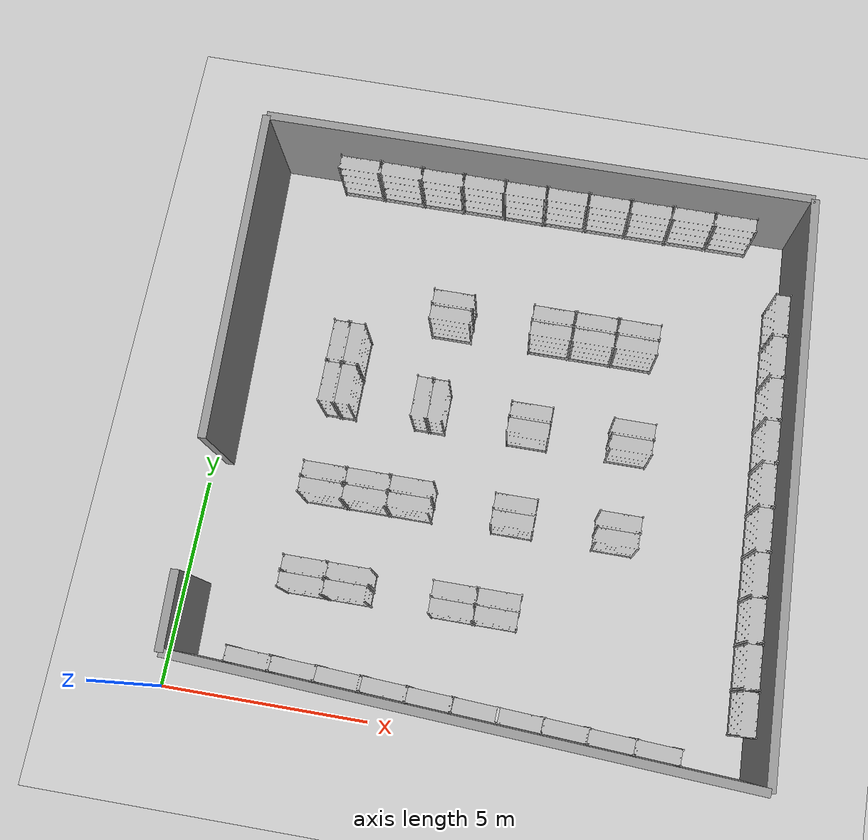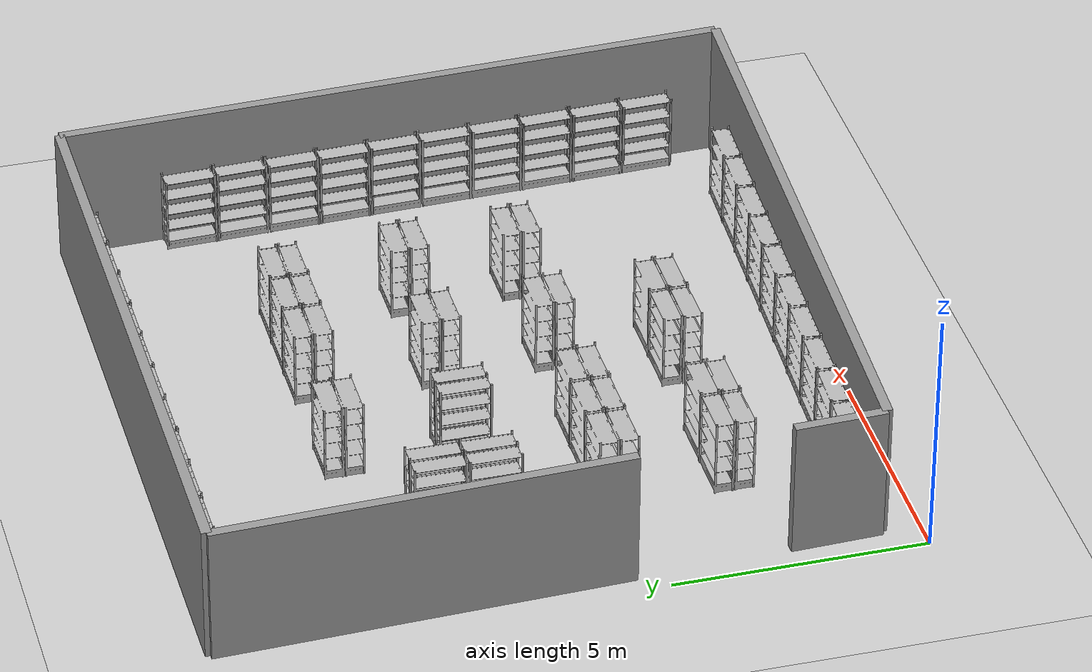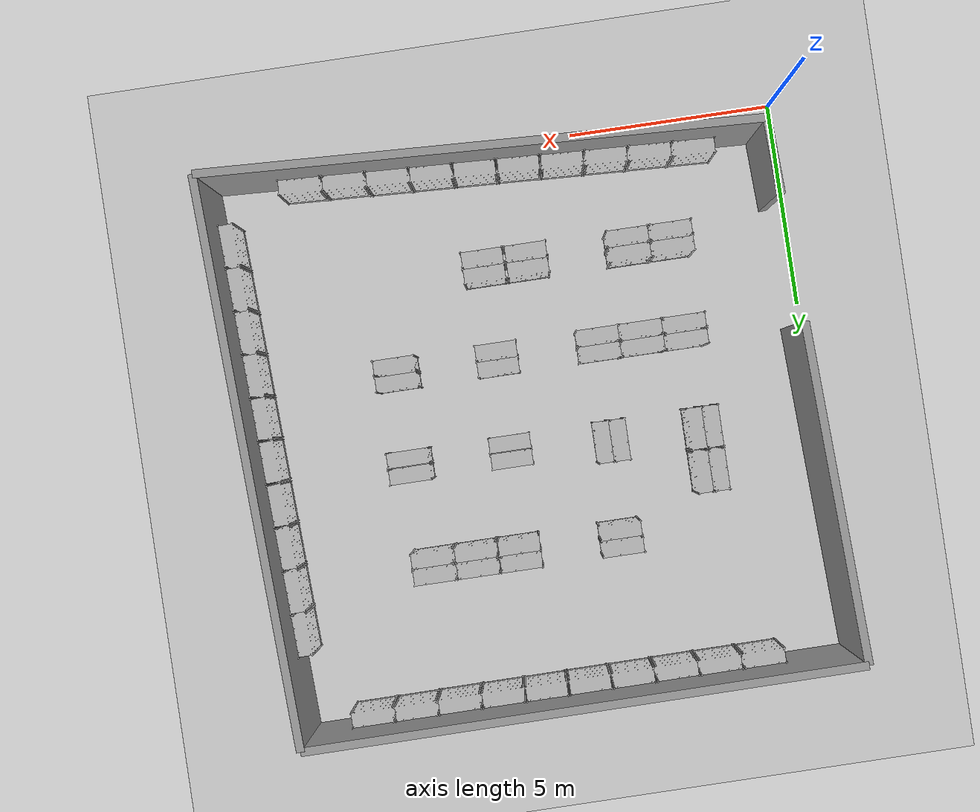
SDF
<sdf version="1.6">
 <world name="default">
  <model name="ground_plane">
   <static>1</static>
   <link name="link">
    <collision name="collision">
     <geometry><plane><normal>0 0 1</normal><size>100 100</size></plane></geometry>
     <surface>
      <contact><collide_bitmask>65535</collide_bitmask></contact>
      <friction><ode><mu>1000</mu><mu2>1000</mu2></ode></friction>
     </surface>
    </collision>
    <visual name="visual">
     <cast_shadows>0</cast_shadows>
     <geometry><plane><normal>0 0 1</normal><size>100 100</size></plane></geometry>
     <material>
      <script><uri>file://media/materials/scripts/gazebo.material</uri><name>Gazebo/Grey</name></script>
     </material>
    </visual>
   </link>
  </model>
  <model name="store_shelf_moduled_0">
   <link name="link">
    <collision name="collision">
     <geometry><mesh><uri>model://store_shelf_moduled/meshes/store_shelf_moduled.dae</uri></mesh></geometry>
    </collision>
    <visual name="visual">
     <geometry><mesh><uri>model://store_shelf_moduled/meshes/store_shelf_moduled.dae</uri></mesh></geometry>
    </visual>
    <inertial>
     <mass>1000</mass>
     <inertia>
      <ixx>840083</ixx>
      <ixy>0</ixy>
      <ixz>0</ixz>
      <iyy>475500</iyy>
      <iyz>0</iyz>
      <izz>1.30208e+06</izz>
     </inertia>
    </inertial>
   </link>
   <static>1</static>
   <pose>1.63493 0.7998784 0 0 0 -0.04932421</pose>
  </model>
  <model name="store_shelf_moduled_1">
   <link name="link">
    <collision name="collision">
     <geometry><mesh><uri>model://store_shelf_moduled/meshes/store_shelf_moduled.dae</uri></mesh></geometry>
    </collision>
    <visual name="visual">
     <geometry><mesh><uri>model://store_shelf_moduled/meshes/store_shelf_moduled.dae</uri></mesh></geometry>
    </visual>
    <inertial>
     <mass>1000</mass>
     <inertia>
      <ixx>840083</ixx>
      <ixy>0</ixy>
      <ixz>0</ixz>
      <iyy>475500</iyy>
      <iyz>0</iyz>
      <izz>1.30208e+06</izz>
     </inertia>
    </inertial>
   </link>
   <static>1</static>
   <pose>2.69493 0.7498784 0 0 0 -0.04932421</pose>
  </model>
  <model name="store_shelf_moduled_2">
   <link name="link">
    <collision name="collision">
     <geometry><mesh><uri>model://store_shelf_moduled/meshes/store_shelf_moduled.dae</uri></mesh></geometry>
    </collision>
    <visual name="visual">
     <geometry><mesh><uri>model://store_shelf_moduled/meshes/store_shelf_moduled.dae</uri></mesh></geometry>
    </visual>
    <inertial>
     <mass>1000</mass>
     <inertia>
      <ixx>840083</ixx>
      <ixy>0</ixy>
      <ixz>0</ixz>
      <iyy>475500</iyy>
      <iyz>0</iyz>
      <izz>1.30208e+06</izz>
     </inertia>
    </inertial>
   </link>
   <static>1</static>
   <pose>3.75493 0.6998784 0 0 0 -0.04932421</pose>
  </model>
  <model name="store_shelf_moduled_3">
   <link name="link">
    <collision name="collision">
     <geometry><mesh><uri>model://store_shelf_moduled/meshes/store_shelf_moduled.dae</uri></mesh></geometry>
    </collision>
    <visual name="visual">
     <geometry><mesh><uri>model://store_shelf_moduled/meshes/store_shelf_moduled.dae</uri></mesh></geometry>
    </visual>
    <inertial>
     <mass>1000</mass>
     <inertia>
      <ixx>840083</ixx>
      <ixy>0</ixy>
      <ixz>0</ixz>
      <iyy>475500</iyy>
      <iyz>0</iyz>
      <izz>1.30208e+06</izz>
     </inertia>
    </inertial>
   </link>
   <static>1</static>
   <pose>4.81493 0.6498784 0 0 0 -0.04932421</pose>
  </model>
  <model name="store_shelf_moduled_4">
   <link name="link">
    <collision name="collision">
     <geometry><mesh><uri>model://store_shelf_moduled/meshes/store_shelf_moduled.dae</uri></mesh></geometry>
    </collision>
    <visual name="visual">
     <geometry><mesh><uri>model://store_shelf_moduled/meshes/store_shelf_moduled.dae</uri></mesh></geometry>
    </visual>
    <inertial>
     <mass>1000</mass>
     <inertia>
      <ixx>840083</ixx>
      <ixy>0</ixy>
      <ixz>0</ixz>
      <iyy>475500</iyy>
      <iyz>0</iyz>
      <izz>1.30208e+06</izz>
     </inertia>
    </inertial>
   </link>
   <static>1</static>
   <pose>5.87493 0.5898784 0 0 0 -0.04932421</pose>
  </model>
  <model name="store_shelf_moduled_5">
   <link name="link">
    <collision name="collision">
     <geometry><mesh><uri>model://store_shelf_moduled/meshes/store_shelf_moduled.dae</uri></mesh></geometry>
    </collision>
    <visual name="visual">
     <geometry><mesh><uri>model://store_shelf_moduled/meshes/store_shelf_moduled.dae</uri></mesh></geometry>
    </visual>
    <inertial>
     <mass>1000</mass>
     <inertia>
      <ixx>840083</ixx>
      <ixy>0</ixy>
      <ixz>0</ixz>
      <iyy>475500</iyy>
      <iyz>0</iyz>
      <izz>1.30208e+06</izz>
     </inertia>
    </inertial>
   </link>
   <static>1</static>
   <pose>6.93493 0.5398784 0 0 0 -0.04932421</pose>
  </model>
  <model name="store_shelf_moduled_6">
   <link name="link">
    <collision name="collision">
     <geometry><mesh><uri>model://store_shelf_moduled/meshes/store_shelf_moduled.dae</uri></mesh></geometry>
    </collision>
    <visual name="visual">
     <geometry><mesh><uri>model://store_shelf_moduled/meshes/store_shelf_moduled.dae</uri></mesh></geometry>
    </visual>
    <inertial>
     <mass>1000</mass>
     <inertia>
      <ixx>840083</ixx>
      <ixy>0</ixy>
      <ixz>0</ixz>
      <iyy>475500</iyy>
      <iyz>0</iyz>
      <izz>1.30208e+06</izz>
     </inertia>
    </inertial>
   </link>
   <static>1</static>
   <pose>7.99493 0.4898784 0 0 0 -0.04932421</pose>
  </model>
  <model name="store_shelf_moduled_7">
   <link name="link">
    <collision name="collision">
     <geometry><mesh><uri>model://store_shelf_moduled/meshes/store_shelf_moduled.dae</uri></mesh></geometry>
    </collision>
    <visual name="visual">
     <geometry><mesh><uri>model://store_shelf_moduled/meshes/store_shelf_moduled.dae</uri></mesh></geometry>
    </visual>
    <inertial>
     <mass>1000</mass>
     <inertia>
      <ixx>840083</ixx>
      <ixy>0</ixy>
      <ixz>0</ixz>
      <iyy>475500</iyy>
      <iyz>0</iyz>
      <izz>1.30208e+06</izz>
     </inertia>
    </inertial>
   </link>
   <static>1</static>
   <pose>9.04493 0.4398784 0 0 0 -0.04932421</pose>
  </model>
  <model name="store_shelf_moduled_8">
   <link name="link">
    <collision name="collision">
     <geometry><mesh><uri>model://store_shelf_moduled/meshes/store_shelf_moduled.dae</uri></mesh></geometry>
    </collision>
    <visual name="visual">
     <geometry><mesh><uri>model://store_shelf_moduled/meshes/store_shelf_moduled.dae</uri></mesh></geometry>
    </visual>
    <inertial>
     <mass>1000</mass>
     <inertia>
      <ixx>840083</ixx>
      <ixy>0</ixy>
      <ixz>0</ixz>
      <iyy>475500</iyy>
      <iyz>0</iyz>
      <izz>1.30208e+06</izz>
     </inertia>
    </inertial>
   </link>
   <static>1</static>
   <pose>10.10493 0.3798784 0 0 0 -0.04932421</pose>
  </model>
  <model name="store_shelf_moduled_9">
   <link name="link">
    <collision name="collision">
     <geometry><mesh><uri>model://store_shelf_moduled/meshes/store_shelf_moduled.dae</uri></mesh></geometry>
    </collision>
    <visual name="visual">
     <geometry><mesh><uri>model://store_shelf_moduled/meshes/store_shelf_moduled.dae</uri></mesh></geometry>
    </visual>
    <inertial>
     <mass>1000</mass>
     <inertia>
      <ixx>840083</ixx>
      <ixy>0</ixy>
      <ixz>0</ixz>
      <iyy>475500</iyy>
      <iyz>0</iyz>
      <izz>1.30208e+06</izz>
     </inertia>
    </inertial>
   </link>
   <static>1</static>
   <pose>11.16493 0.3298784 0 0 0 -0.04932421</pose>
  </model>
  <model name="store_shelf_moduled_10">
   <link name="link">
    <collision name="collision">
     <geometry><mesh><uri>model://store_shelf_moduled/meshes/store_shelf_moduled.dae</uri></mesh></geometry>
    </collision>
    <visual name="visual">
     <geometry><mesh><uri>model://store_shelf_moduled/meshes/store_shelf_moduled.dae</uri></mesh></geometry>
    </visual>
    <inertial>
     <mass>1000</mass>
     <inertia>
      <ixx>840083</ixx>
      <ixy>0</ixy>
      <ixz>0</ixz>
      <iyy>475500</iyy>
      <iyz>0</iyz>
      <izz>1.30208e+06</izz>
     </inertia>
    </inertial>
   </link>
   <static>1</static>
   <pose>13.80007 1.146185 0 0 0 1.608957</pose>
  </model>
  <model name="store_shelf_moduled_11">
   <link name="link">
    <collision name="collision">
     <geometry><mesh><uri>model://store_shelf_moduled/meshes/store_shelf_moduled.dae</uri></mesh></geometry>
    </collision>
    <visual name="visual">
     <geometry><mesh><uri>model://store_shelf_moduled/meshes/store_shelf_moduled.dae</uri></mesh></geometry>
    </visual>
    <inertial>
     <mass>1000</mass>
     <inertia>
      <ixx>840083</ixx>
      <ixy>0</ixy>
      <ixz>0</ixz>
      <iyy>475500</iyy>
      <iyz>0</iyz>
      <izz>1.30208e+06</izz>
     </inertia>
    </inertial>
   </link>
   <static>1</static>
   <pose>13.76007 2.206185 0 0 0 1.608957</pose>
  </model>
  <model name="store_shelf_moduled_12">
   <link name="link">
    <collision name="collision">
     <geometry><mesh><uri>model://store_shelf_moduled/meshes/store_shelf_moduled.dae</uri></mesh></geometry>
    </collision>
    <visual name="visual">
     <geometry><mesh><uri>model://store_shelf_moduled/meshes/store_shelf_moduled.dae</uri></mesh></geometry>
    </visual>
    <inertial>
     <mass>1000</mass>
     <inertia>
      <ixx>840083</ixx>
      <ixy>0</ixy>
      <ixz>0</ixz>
      <iyy>475500</iyy>
      <iyz>0</iyz>
      <izz>1.30208e+06</izz>
     </inertia>
    </inertial>
   </link>
   <static>1</static>
   <pose>13.72007 3.266185 0 0 0 1.608957</pose>
  </model>
  <model name="store_shelf_moduled_13">
   <link name="link">
    <collision name="collision">
     <geometry><mesh><uri>model://store_shelf_moduled/meshes/store_shelf_moduled.dae</uri></mesh></geometry>
    </collision>
    <visual name="visual">
     <geometry><mesh><uri>model://store_shelf_moduled/meshes/store_shelf_moduled.dae</uri></mesh></geometry>
    </visual>
    <inertial>
     <mass>1000</mass>
     <inertia>
      <ixx>840083</ixx>
      <ixy>0</ixy>
      <ixz>0</ixz>
      <iyy>475500</iyy>
      <iyz>0</iyz>
      <izz>1.30208e+06</izz>
     </inertia>
    </inertial>
   </link>
   <static>1</static>
   <pose>13.68007 4.326185 0 0 0 1.608957</pose>
  </model>
  <model name="store_shelf_moduled_14">
   <link name="link">
    <collision name="collision">
     <geometry><mesh><uri>model://store_shelf_moduled/meshes/store_shelf_moduled.dae</uri></mesh></geometry>
    </collision>
    <visual name="visual">
     <geometry><mesh><uri>model://store_shelf_moduled/meshes/store_shelf_moduled.dae</uri></mesh></geometry>
    </visual>
    <inertial>
     <mass>1000</mass>
     <inertia>
      <ixx>840083</ixx>
      <ixy>0</ixy>
      <ixz>0</ixz>
      <iyy>475500</iyy>
      <iyz>0</iyz>
      <izz>1.30208e+06</izz>
     </inertia>
    </inertial>
   </link>
   <static>1</static>
   <pose>13.64007 5.386185 0 0 0 1.608957</pose>
  </model>
  <model name="store_shelf_moduled_15">
   <link name="link">
    <collision name="collision">
     <geometry><mesh><uri>model://store_shelf_moduled/meshes/store_shelf_moduled.dae</uri></mesh></geometry>
    </collision>
    <visual name="visual">
     <geometry><mesh><uri>model://store_shelf_moduled/meshes/store_shelf_moduled.dae</uri></mesh></geometry>
    </visual>
    <inertial>
     <mass>1000</mass>
     <inertia>
      <ixx>840083</ixx>
      <ixy>0</ixy>
      <ixz>0</ixz>
      <iyy>475500</iyy>
      <iyz>0</iyz>
      <izz>1.30208e+06</izz>
     </inertia>
    </inertial>
   </link>
   <static>1</static>
   <pose>13.60007 6.446185 0 0 0 1.608957</pose>
  </model>
  <model name="store_shelf_moduled_16">
   <link name="link">
    <collision name="collision">
     <geometry><mesh><uri>model://store_shelf_moduled/meshes/store_shelf_moduled.dae</uri></mesh></geometry>
    </collision>
    <visual name="visual">
     <geometry><mesh><uri>model://store_shelf_moduled/meshes/store_shelf_moduled.dae</uri></mesh></geometry>
    </visual>
    <inertial>
     <mass>1000</mass>
     <inertia>
      <ixx>840083</ixx>
      <ixy>0</ixy>
      <ixz>0</ixz>
      <iyy>475500</iyy>
      <iyz>0</iyz>
      <izz>1.30208e+06</izz>
     </inertia>
    </inertial>
   </link>
   <static>1</static>
   <pose>13.56007 7.506185 0 0 0 1.608957</pose>
  </model>
  <model name="store_shelf_moduled_17">
   <link name="link">
    <collision name="collision">
     <geometry><mesh><uri>model://store_shelf_moduled/meshes/store_shelf_moduled.dae</uri></mesh></geometry>
    </collision>
    <visual name="visual">
     <geometry><mesh><uri>model://store_shelf_moduled/meshes/store_shelf_moduled.dae</uri></mesh></geometry>
    </visual>
    <inertial>
     <mass>1000</mass>
     <inertia>
      <ixx>840083</ixx>
      <ixy>0</ixy>
      <ixz>0</ixz>
      <iyy>475500</iyy>
      <iyz>0</iyz>
      <izz>1.30208e+06</izz>
     </inertia>
    </inertial>
   </link>
   <static>1</static>
   <pose>13.52007 8.566185 0 0 0 1.608957</pose>
  </model>
  <model name="store_shelf_moduled_18">
   <link name="link">
    <collision name="collision">
     <geometry><mesh><uri>model://store_shelf_moduled/meshes/store_shelf_moduled.dae</uri></mesh></geometry>
    </collision>
    <visual name="visual">
     <geometry><mesh><uri>model://store_shelf_moduled/meshes/store_shelf_moduled.dae</uri></mesh></geometry>
    </visual>
    <inertial>
     <mass>1000</mass>
     <inertia>
      <ixx>840083</ixx>
      <ixy>0</ixy>
      <ixz>0</ixz>
      <iyy>475500</iyy>
      <iyz>0</iyz>
      <izz>1.30208e+06</izz>
     </inertia>
    </inertial>
   </link>
   <static>1</static>
   <pose>13.48007 9.626184 0 0 0 1.608957</pose>
  </model>
  <model name="store_shelf_moduled_19">
   <link name="link">
    <collision name="collision">
     <geometry><mesh><uri>model://store_shelf_moduled/meshes/store_shelf_moduled.dae</uri></mesh></geometry>
    </collision>
    <visual name="visual">
     <geometry><mesh><uri>model://store_shelf_moduled/meshes/store_shelf_moduled.dae</uri></mesh></geometry>
    </visual>
    <inertial>
     <mass>1000</mass>
     <inertia>
      <ixx>840083</ixx>
      <ixy>0</ixy>
      <ixz>0</ixz>
      <iyy>475500</iyy>
      <iyz>0</iyz>
      <izz>1.30208e+06</izz>
     </inertia>
    </inertial>
   </link>
   <static>1</static>
   <pose>13.44007 10.68618 0 0 0 1.608957</pose>
  </model>
  <model name="store_shelf_moduled_20">
   <link name="link">
    <collision name="collision">
     <geometry><mesh><uri>model://store_shelf_moduled/meshes/store_shelf_moduled.dae</uri></mesh></geometry>
    </collision>
    <visual name="visual">
     <geometry><mesh><uri>model://store_shelf_moduled/meshes/store_shelf_moduled.dae</uri></mesh></geometry>
    </visual>
    <inertial>
     <mass>1000</mass>
     <inertia>
      <ixx>840083</ixx>
      <ixy>0</ixy>
      <ixz>0</ixz>
      <iyy>475500</iyy>
      <iyz>0</iyz>
      <izz>1.30208e+06</izz>
     </inertia>
    </inertial>
   </link>
   <static>1</static>
   <pose>12.37037 13.61 0 0 0 -3.137842</pose>
  </model>
  <model name="store_shelf_moduled_21">
   <link name="link">
    <collision name="collision">
     <geometry><mesh><uri>model://store_shelf_moduled/meshes/store_shelf_moduled.dae</uri></mesh></geometry>
    </collision>
    <visual name="visual">
     <geometry><mesh><uri>model://store_shelf_moduled/meshes/store_shelf_moduled.dae</uri></mesh></geometry>
    </visual>
    <inertial>
     <mass>1000</mass>
     <inertia>
      <ixx>840083</ixx>
      <ixy>0</ixy>
      <ixz>0</ixz>
      <iyy>475500</iyy>
      <iyz>0</iyz>
      <izz>1.30208e+06</izz>
     </inertia>
    </inertial>
   </link>
   <static>1</static>
   <pose>11.31038 13.61 0 0 0 -3.137842</pose>
  </model>
  <model name="store_shelf_moduled_22">
   <link name="link">
    <collision name="collision">
     <geometry><mesh><uri>model://store_shelf_moduled/meshes/store_shelf_moduled.dae</uri></mesh></geometry>
    </collision>
    <visual name="visual">
     <geometry><mesh><uri>model://store_shelf_moduled/meshes/store_shelf_moduled.dae</uri></mesh></geometry>
    </visual>
    <inertial>
     <mass>1000</mass>
     <inertia>
      <ixx>840083</ixx>
      <ixy>0</ixy>
      <ixz>0</ixz>
      <iyy>475500</iyy>
      <iyz>0</iyz>
      <izz>1.30208e+06</izz>
     </inertia>
    </inertial>
   </link>
   <static>1</static>
   <pose>10.25037 13.6 0 0 0 -3.137842</pose>
  </model>
  <model name="store_shelf_moduled_23">
   <link name="link">
    <collision name="collision">
     <geometry><mesh><uri>model://store_shelf_moduled/meshes/store_shelf_moduled.dae</uri></mesh></geometry>
    </collision>
    <visual name="visual">
     <geometry><mesh><uri>model://store_shelf_moduled/meshes/store_shelf_moduled.dae</uri></mesh></geometry>
    </visual>
    <inertial>
     <mass>1000</mass>
     <inertia>
      <ixx>840083</ixx>
      <ixy>0</ixy>
      <ixz>0</ixz>
      <iyy>475500</iyy>
      <iyz>0</iyz>
      <izz>1.30208e+06</izz>
     </inertia>
    </inertial>
   </link>
   <static>1</static>
   <pose>9.190375 13.6 0 0 0 -3.137842</pose>
  </model>
  <model name="store_shelf_moduled_24">
   <link name="link">
    <collision name="collision">
     <geometry><mesh><uri>model://store_shelf_moduled/meshes/store_shelf_moduled.dae</uri></mesh></geometry>
    </collision>
    <visual name="visual">
     <geometry><mesh><uri>model://store_shelf_moduled/meshes/store_shelf_moduled.dae</uri></mesh></geometry>
    </visual>
    <inertial>
     <mass>1000</mass>
     <inertia>
      <ixx>840083</ixx>
      <ixy>0</ixy>
      <ixz>0</ixz>
      <iyy>475500</iyy>
      <iyz>0</iyz>
      <izz>1.30208e+06</izz>
     </inertia>
    </inertial>
   </link>
   <static>1</static>
   <pose>8.130375 13.6 0 0 0 -3.137842</pose>
  </model>
  <model name="store_shelf_moduled_25">
   <link name="link">
    <collision name="collision">
     <geometry><mesh><uri>model://store_shelf_moduled/meshes/store_shelf_moduled.dae</uri></mesh></geometry>
    </collision>
    <visual name="visual">
     <geometry><mesh><uri>model://store_shelf_moduled/meshes/store_shelf_moduled.dae</uri></mesh></geometry>
    </visual>
    <inertial>
     <mass>1000</mass>
     <inertia>
      <ixx>840083</ixx>
      <ixy>0</ixy>
      <ixz>0</ixz>
      <iyy>475500</iyy>
      <iyz>0</iyz>
      <izz>1.30208e+06</izz>
     </inertia>
    </inertial>
   </link>
   <static>1</static>
   <pose>7.070375 13.59 0 0 0 -3.137842</pose>
  </model>
  <model name="store_shelf_moduled_26">
   <link name="link">
    <collision name="collision">
     <geometry><mesh><uri>model://store_shelf_moduled/meshes/store_shelf_moduled.dae</uri></mesh></geometry>
    </collision>
    <visual name="visual">
     <geometry><mesh><uri>model://store_shelf_moduled/meshes/store_shelf_moduled.dae</uri></mesh></geometry>
    </visual>
    <inertial>
     <mass>1000</mass>
     <inertia>
      <ixx>840083</ixx>
      <ixy>0</ixy>
      <ixz>0</ixz>
      <iyy>475500</iyy>
      <iyz>0</iyz>
      <izz>1.30208e+06</izz>
     </inertia>
    </inertial>
   </link>
   <static>1</static>
   <pose>6.010375 13.59 0 0 0 -3.137842</pose>
  </model>
  <model name="store_shelf_moduled_27">
   <link name="link">
    <collision name="collision">
     <geometry><mesh><uri>model://store_shelf_moduled/meshes/store_shelf_moduled.dae</uri></mesh></geometry>
    </collision>
    <visual name="visual">
     <geometry><mesh><uri>model://store_shelf_moduled/meshes/store_shelf_moduled.dae</uri></mesh></geometry>
    </visual>
    <inertial>
     <mass>1000</mass>
     <inertia>
      <ixx>840083</ixx>
      <ixy>0</ixy>
      <ixz>0</ixz>
      <iyy>475500</iyy>
      <iyz>0</iyz>
      <izz>1.30208e+06</izz>
     </inertia>
    </inertial>
   </link>
   <static>1</static>
   <pose>4.950375 13.58 0 0 0 -3.137842</pose>
  </model>
  <model name="store_shelf_moduled_28">
   <link name="link">
    <collision name="collision">
     <geometry><mesh><uri>model://store_shelf_moduled/meshes/store_shelf_moduled.dae</uri></mesh></geometry>
    </collision>
    <visual name="visual">
     <geometry><mesh><uri>model://store_shelf_moduled/meshes/store_shelf_moduled.dae</uri></mesh></geometry>
    </visual>
    <inertial>
     <mass>1000</mass>
     <inertia>
      <ixx>840083</ixx>
      <ixy>0</ixy>
      <ixz>0</ixz>
      <iyy>475500</iyy>
      <iyz>0</iyz>
      <izz>1.30208e+06</izz>
     </inertia>
    </inertial>
   </link>
   <static>1</static>
   <pose>3.890375 13.58 0 0 0 -3.137842</pose>
  </model>
  <model name="store_shelf_moduled_29">
   <link name="link">
    <collision name="collision">
     <geometry><mesh><uri>model://store_shelf_moduled/meshes/store_shelf_moduled.dae</uri></mesh></geometry>
    </collision>
    <visual name="visual">
     <geometry><mesh><uri>model://store_shelf_moduled/meshes/store_shelf_moduled.dae</uri></mesh></geometry>
    </visual>
    <inertial>
     <mass>1000</mass>
     <inertia>
      <ixx>840083</ixx>
      <ixy>0</ixy>
      <ixz>0</ixz>
      <iyy>475500</iyy>
      <iyz>0</iyz>
      <izz>1.30208e+06</izz>
     </inertia>
    </inertial>
   </link>
   <static>1</static>
   <pose>2.830375 13.58 0 0 0 -3.137842</pose>
  </model>
  <model name="store_shelf_moduled_30">
   <link name="link">
    <collision name="collision">
     <geometry><mesh><uri>model://store_shelf_moduled/meshes/store_shelf_moduled.dae</uri></mesh></geometry>
    </collision>
    <visual name="visual">
     <geometry><mesh><uri>model://store_shelf_moduled/meshes/store_shelf_moduled.dae</uri></mesh></geometry>
    </visual>
    <inertial>
     <mass>1000</mass>
     <inertia>
      <ixx>840083</ixx>
      <ixy>0</ixy>
      <ixz>0</ixz>
      <iyy>475500</iyy>
      <iyz>0</iyz>
      <izz>1.30208e+06</izz>
     </inertia>
    </inertial>
   </link>
   <static>1</static>
   <pose>4.74 10.05 0 0 0 0</pose>
  </model>
  <model name="store_shelf_moduled_31">
   <link name="link">
    <collision name="collision">
     <geometry><mesh><uri>model://store_shelf_moduled/meshes/store_shelf_moduled.dae</uri></mesh></geometry>
    </collision>
    <visual name="visual">
     <geometry><mesh><uri>model://store_shelf_moduled/meshes/store_shelf_moduled.dae</uri></mesh></geometry>
    </visual>
    <inertial>
     <mass>1000</mass>
     <inertia>
      <ixx>840083</ixx>
      <ixy>0</ixy>
      <ixz>0</ixz>
      <iyy>475500</iyy>
      <iyz>0</iyz>
      <izz>1.30208e+06</izz>
     </inertia>
    </inertial>
   </link>
   <static>1</static>
   <pose>5.8 10.05 0 0 0 -3.141593</pose>
  </model>
  <model name="store_shelf_moduled_32">
   <link name="link">
    <collision name="collision">
     <geometry><mesh><uri>model://store_shelf_moduled/meshes/store_shelf_moduled.dae</uri></mesh></geometry>
    </collision>
    <visual name="visual">
     <geometry><mesh><uri>model://store_shelf_moduled/meshes/store_shelf_moduled.dae</uri></mesh></geometry>
    </visual>
    <inertial>
     <mass>1000</mass>
     <inertia>
      <ixx>840083</ixx>
      <ixy>0</ixy>
      <ixz>0</ixz>
      <iyy>475500</iyy>
      <iyz>0</iyz>
      <izz>1.30208e+06</izz>
     </inertia>
    </inertial>
   </link>
   <static>1</static>
   <pose>2.9 7.15 0 0 0 1.570796</pose>
  </model>
  <model name="store_shelf_moduled_33">
   <link name="link">
    <collision name="collision">
     <geometry><mesh><uri>model://store_shelf_moduled/meshes/store_shelf_moduled.dae</uri></mesh></geometry>
    </collision>
    <visual name="visual">
     <geometry><mesh><uri>model://store_shelf_moduled/meshes/store_shelf_moduled.dae</uri></mesh></geometry>
    </visual>
    <inertial>
     <mass>1000</mass>
     <inertia>
      <ixx>840083</ixx>
      <ixy>0</ixy>
      <ixz>0</ixz>
      <iyy>475500</iyy>
      <iyz>0</iyz>
      <izz>1.30208e+06</izz>
     </inertia>
    </inertial>
   </link>
   <static>1</static>
   <pose>2.9 8.21 0 0 0 -1.570796</pose>
  </model>
  <model name="store_shelf_moduled_34">
   <link name="link">
    <collision name="collision">
     <geometry><mesh><uri>model://store_shelf_moduled/meshes/store_shelf_moduled.dae</uri></mesh></geometry>
    </collision>
    <visual name="visual">
     <geometry><mesh><uri>model://store_shelf_moduled/meshes/store_shelf_moduled.dae</uri></mesh></geometry>
    </visual>
    <inertial>
     <mass>1000</mass>
     <inertia>
      <ixx>840083</ixx>
      <ixy>0</ixy>
      <ixz>0</ixz>
      <iyy>475500</iyy>
      <iyz>0</iyz>
      <izz>1.30208e+06</izz>
     </inertia>
    </inertial>
   </link>
   <static>1</static>
   <pose>2.9 8.21 0 0 0 1.570796</pose>
  </model>
  <model name="store_shelf_moduled_35">
   <link name="link">
    <collision name="collision">
     <geometry><mesh><uri>model://store_shelf_moduled/meshes/store_shelf_moduled.dae</uri></mesh></geometry>
    </collision>
    <visual name="visual">
     <geometry><mesh><uri>model://store_shelf_moduled/meshes/store_shelf_moduled.dae</uri></mesh></geometry>
    </visual>
    <inertial>
     <mass>1000</mass>
     <inertia>
      <ixx>840083</ixx>
      <ixy>0</ixy>
      <ixz>0</ixz>
      <iyy>475500</iyy>
      <iyz>0</iyz>
      <izz>1.30208e+06</izz>
     </inertia>
    </inertial>
   </link>
   <static>1</static>
   <pose>2.9 9.27 0 0 0 -1.570796</pose>
  </model>
  <model name="store_shelf_moduled_36">
   <link name="link">
    <collision name="collision">
     <geometry><mesh><uri>model://store_shelf_moduled/meshes/store_shelf_moduled.dae</uri></mesh></geometry>
    </collision>
    <visual name="visual">
     <geometry><mesh><uri>model://store_shelf_moduled/meshes/store_shelf_moduled.dae</uri></mesh></geometry>
    </visual>
    <inertial>
     <mass>1000</mass>
     <inertia>
      <ixx>840083</ixx>
      <ixy>0</ixy>
      <ixz>0</ixz>
      <iyy>475500</iyy>
      <iyz>0</iyz>
      <izz>1.30208e+06</izz>
     </inertia>
    </inertial>
   </link>
   <static>1</static>
   <pose>6.02 3.05 0 0 0 0</pose>
  </model>
  <model name="store_shelf_moduled_37">
   <link name="link">
    <collision name="collision">
     <geometry><mesh><uri>model://store_shelf_moduled/meshes/store_shelf_moduled.dae</uri></mesh></geometry>
    </collision>
    <visual name="visual">
     <geometry><mesh><uri>model://store_shelf_moduled/meshes/store_shelf_moduled.dae</uri></mesh></geometry>
    </visual>
    <inertial>
     <mass>1000</mass>
     <inertia>
      <ixx>840083</ixx>
      <ixy>0</ixy>
      <ixz>0</ixz>
      <iyy>475500</iyy>
      <iyz>0</iyz>
      <izz>1.30208e+06</izz>
     </inertia>
    </inertial>
   </link>
   <static>1</static>
   <pose>7.08 3.05 0 0 0 -3.141593</pose>
  </model>
  <model name="store_shelf_moduled_38">
   <link name="link">
    <collision name="collision">
     <geometry><mesh><uri>model://store_shelf_moduled/meshes/store_shelf_moduled.dae</uri></mesh></geometry>
    </collision>
    <visual name="visual">
     <geometry><mesh><uri>model://store_shelf_moduled/meshes/store_shelf_moduled.dae</uri></mesh></geometry>
    </visual>
    <inertial>
     <mass>1000</mass>
     <inertia>
      <ixx>840083</ixx>
      <ixy>0</ixy>
      <ixz>0</ixz>
      <iyy>475500</iyy>
      <iyz>0</iyz>
      <izz>1.30208e+06</izz>
     </inertia>
    </inertial>
   </link>
   <static>1</static>
   <pose>7.08 3.05 0 0 0 0</pose>
  </model>
  <model name="store_shelf_moduled_39">
   <link name="link">
    <collision name="collision">
     <geometry><mesh><uri>model://store_shelf_moduled/meshes/store_shelf_moduled.dae</uri></mesh></geometry>
    </collision>
    <visual name="visual">
     <geometry><mesh><uri>model://store_shelf_moduled/meshes/store_shelf_moduled.dae</uri></mesh></geometry>
    </visual>
    <inertial>
     <mass>1000</mass>
     <inertia>
      <ixx>840083</ixx>
      <ixy>0</ixy>
      <ixz>0</ixz>
      <iyy>475500</iyy>
      <iyz>0</iyz>
      <izz>1.30208e+06</izz>
     </inertia>
    </inertial>
   </link>
   <static>1</static>
   <pose>8.14 3.05 0 0 0 -3.141593</pose>
  </model>
  <model name="store_shelf_moduled_40">
   <link name="link">
    <collision name="collision">
     <geometry><mesh><uri>model://store_shelf_moduled/meshes/store_shelf_moduled.dae</uri></mesh></geometry>
    </collision>
    <visual name="visual">
     <geometry><mesh><uri>model://store_shelf_moduled/meshes/store_shelf_moduled.dae</uri></mesh></geometry>
    </visual>
    <inertial>
     <mass>1000</mass>
     <inertia>
      <ixx>840083</ixx>
      <ixy>0</ixy>
      <ixz>0</ixz>
      <iyy>475500</iyy>
      <iyz>0</iyz>
      <izz>1.30208e+06</izz>
     </inertia>
    </inertial>
   </link>
   <static>1</static>
   <pose>2.48 5.31 0 0 0 0</pose>
  </model>
  <model name="store_shelf_moduled_41">
   <link name="link">
    <collision name="collision">
     <geometry><mesh><uri>model://store_shelf_moduled/meshes/store_shelf_moduled.dae</uri></mesh></geometry>
    </collision>
    <visual name="visual">
     <geometry><mesh><uri>model://store_shelf_moduled/meshes/store_shelf_moduled.dae</uri></mesh></geometry>
    </visual>
    <inertial>
     <mass>1000</mass>
     <inertia>
      <ixx>840083</ixx>
      <ixy>0</ixy>
      <ixz>0</ixz>
      <iyy>475500</iyy>
      <iyz>0</iyz>
      <izz>1.30208e+06</izz>
     </inertia>
    </inertial>
   </link>
   <static>1</static>
   <pose>3.54 5.31 0 0 0 -3.141593</pose>
  </model>
  <model name="store_shelf_moduled_42">
   <link name="link">
    <collision name="collision">
     <geometry><mesh><uri>model://store_shelf_moduled/meshes/store_shelf_moduled.dae</uri></mesh></geometry>
    </collision>
    <visual name="visual">
     <geometry><mesh><uri>model://store_shelf_moduled/meshes/store_shelf_moduled.dae</uri></mesh></geometry>
    </visual>
    <inertial>
     <mass>1000</mass>
     <inertia>
      <ixx>840083</ixx>
      <ixy>0</ixy>
      <ixz>0</ixz>
      <iyy>475500</iyy>
      <iyz>0</iyz>
      <izz>1.30208e+06</izz>
     </inertia>
    </inertial>
   </link>
   <static>1</static>
   <pose>3.54 5.31 0 0 0 0</pose>
  </model>
  <model name="store_shelf_moduled_43">
   <link name="link">
    <collision name="collision">
     <geometry><mesh><uri>model://store_shelf_moduled/meshes/store_shelf_moduled.dae</uri></mesh></geometry>
    </collision>
    <visual name="visual">
     <geometry><mesh><uri>model://store_shelf_moduled/meshes/store_shelf_moduled.dae</uri></mesh></geometry>
    </visual>
    <inertial>
     <mass>1000</mass>
     <inertia>
      <ixx>840083</ixx>
      <ixy>0</ixy>
      <ixz>0</ixz>
      <iyy>475500</iyy>
      <iyz>0</iyz>
      <izz>1.30208e+06</izz>
     </inertia>
    </inertial>
   </link>
   <static>1</static>
   <pose>4.6 5.31 0 0 0 -3.141593</pose>
  </model>
  <model name="store_shelf_moduled_44">
   <link name="link">
    <collision name="collision">
     <geometry><mesh><uri>model://store_shelf_moduled/meshes/store_shelf_moduled.dae</uri></mesh></geometry>
    </collision>
    <visual name="visual">
     <geometry><mesh><uri>model://store_shelf_moduled/meshes/store_shelf_moduled.dae</uri></mesh></geometry>
    </visual>
    <inertial>
     <mass>1000</mass>
     <inertia>
      <ixx>840083</ixx>
      <ixy>0</ixy>
      <ixz>0</ixz>
      <iyy>475500</iyy>
      <iyz>0</iyz>
      <izz>1.30208e+06</izz>
     </inertia>
    </inertial>
   </link>
   <static>1</static>
   <pose>4.6 5.31 0 0 0 0</pose>
  </model>
  <model name="store_shelf_moduled_45">
   <link name="link">
    <collision name="collision">
     <geometry><mesh><uri>model://store_shelf_moduled/meshes/store_shelf_moduled.dae</uri></mesh></geometry>
    </collision>
    <visual name="visual">
     <geometry><mesh><uri>model://store_shelf_moduled/meshes/store_shelf_moduled.dae</uri></mesh></geometry>
    </visual>
    <inertial>
     <mass>1000</mass>
     <inertia>
      <ixx>840083</ixx>
      <ixy>0</ixy>
      <ixz>0</ixz>
      <iyy>475500</iyy>
      <iyz>0</iyz>
      <izz>1.30208e+06</izz>
     </inertia>
    </inertial>
   </link>
   <static>1</static>
   <pose>5.66 5.31 0 0 0 -3.141593</pose>
  </model>
  <model name="store_shelf_moduled_46">
   <link name="link">
    <collision name="collision">
     <geometry><mesh><uri>model://store_shelf_moduled/meshes/store_shelf_moduled.dae</uri></mesh></geometry>
    </collision>
    <visual name="visual">
     <geometry><mesh><uri>model://store_shelf_moduled/meshes/store_shelf_moduled.dae</uri></mesh></geometry>
    </visual>
    <inertial>
     <mass>1000</mass>
     <inertia>
      <ixx>840083</ixx>
      <ixy>0</ixy>
      <ixz>0</ixz>
      <iyy>475500</iyy>
      <iyz>0</iyz>
      <izz>1.30208e+06</izz>
     </inertia>
    </inertial>
   </link>
   <static>1</static>
   <pose>9.56 5.31 0 0 0 0</pose>
  </model>
  <model name="store_shelf_moduled_47">
   <link name="link">
    <collision name="collision">
     <geometry><mesh><uri>model://store_shelf_moduled/meshes/store_shelf_moduled.dae</uri></mesh></geometry>
    </collision>
    <visual name="visual">
     <geometry><mesh><uri>model://store_shelf_moduled/meshes/store_shelf_moduled.dae</uri></mesh></geometry>
    </visual>
    <inertial>
     <mass>1000</mass>
     <inertia>
      <ixx>840083</ixx>
      <ixy>0</ixy>
      <ixz>0</ixz>
      <iyy>475500</iyy>
      <iyz>0</iyz>
      <izz>1.30208e+06</izz>
     </inertia>
    </inertial>
   </link>
   <static>1</static>
   <pose>10.62 5.31 0 0 0 -3.141593</pose>
  </model>
  <model name="store_shelf_moduled_48">
   <link name="link">
    <collision name="collision">
     <geometry><mesh><uri>model://store_shelf_moduled/meshes/store_shelf_moduled.dae</uri></mesh></geometry>
    </collision>
    <visual name="visual">
     <geometry><mesh><uri>model://store_shelf_moduled/meshes/store_shelf_moduled.dae</uri></mesh></geometry>
    </visual>
    <inertial>
     <mass>1000</mass>
     <inertia>
      <ixx>840083</ixx>
      <ixy>0</ixy>
      <ixz>0</ixz>
      <iyy>475500</iyy>
      <iyz>0</iyz>
      <izz>1.30208e+06</izz>
     </inertia>
    </inertial>
   </link>
   <static>1</static>
   <pose>7.08 7.57 0 0 0 0</pose>
  </model>
  <model name="store_shelf_moduled_49">
   <link name="link">
    <collision name="collision">
     <geometry><mesh><uri>model://store_shelf_moduled/meshes/store_shelf_moduled.dae</uri></mesh></geometry>
    </collision>
    <visual name="visual">
     <geometry><mesh><uri>model://store_shelf_moduled/meshes/store_shelf_moduled.dae</uri></mesh></geometry>
    </visual>
    <inertial>
     <mass>1000</mass>
     <inertia>
      <ixx>840083</ixx>
      <ixy>0</ixy>
      <ixz>0</ixz>
      <iyy>475500</iyy>
      <iyz>0</iyz>
      <izz>1.30208e+06</izz>
     </inertia>
    </inertial>
   </link>
   <static>1</static>
   <pose>8.14 7.57 0 0 0 -3.141593</pose>
  </model>
  <model name="store_shelf_moduled_50">
   <link name="link">
    <collision name="collision">
     <geometry><mesh><uri>model://store_shelf_moduled/meshes/store_shelf_moduled.dae</uri></mesh></geometry>
    </collision>
    <visual name="visual">
     <geometry><mesh><uri>model://store_shelf_moduled/meshes/store_shelf_moduled.dae</uri></mesh></geometry>
    </visual>
    <inertial>
     <mass>1000</mass>
     <inertia>
      <ixx>840083</ixx>
      <ixy>0</ixy>
      <ixz>0</ixz>
      <iyy>475500</iyy>
      <iyz>0</iyz>
      <izz>1.30208e+06</izz>
     </inertia>
    </inertial>
   </link>
   <static>1</static>
   <pose>7.08 5.31 0 0 0 0</pose>
  </model>
  <model name="store_shelf_moduled_51">
   <link name="link">
    <collision name="collision">
     <geometry><mesh><uri>model://store_shelf_moduled/meshes/store_shelf_moduled.dae</uri></mesh></geometry>
    </collision>
    <visual name="visual">
     <geometry><mesh><uri>model://store_shelf_moduled/meshes/store_shelf_moduled.dae</uri></mesh></geometry>
    </visual>
    <inertial>
     <mass>1000</mass>
     <inertia>
      <ixx>840083</ixx>
      <ixy>0</ixy>
      <ixz>0</ixz>
      <iyy>475500</iyy>
      <iyz>0</iyz>
      <izz>1.30208e+06</izz>
     </inertia>
    </inertial>
   </link>
   <static>1</static>
   <pose>8.14 5.31 0 0 0 -3.141593</pose>
  </model>
  <model name="store_shelf_moduled_52">
   <link name="link">
    <collision name="collision">
     <geometry><mesh><uri>model://store_shelf_moduled/meshes/store_shelf_moduled.dae</uri></mesh></geometry>
    </collision>
    <visual name="visual">
     <geometry><mesh><uri>model://store_shelf_moduled/meshes/store_shelf_moduled.dae</uri></mesh></geometry>
    </visual>
    <inertial>
     <mass>1000</mass>
     <inertia>
      <ixx>840083</ixx>
      <ixy>0</ixy>
      <ixz>0</ixz>
      <iyy>475500</iyy>
      <iyz>0</iyz>
      <izz>1.30208e+06</izz>
     </inertia>
    </inertial>
   </link>
   <static>1</static>
   <pose>7.22 10.05 0 0 0 0</pose>
  </model>
  <model name="store_shelf_moduled_53">
   <link name="link">
    <collision name="collision">
     <geometry><mesh><uri>model://store_shelf_moduled/meshes/store_shelf_moduled.dae</uri></mesh></geometry>
    </collision>
    <visual name="visual">
     <geometry><mesh><uri>model://store_shelf_moduled/meshes/store_shelf_moduled.dae</uri></mesh></geometry>
    </visual>
    <inertial>
     <mass>1000</mass>
     <inertia>
      <ixx>840083</ixx>
      <ixy>0</ixy>
      <ixz>0</ixz>
      <iyy>475500</iyy>
      <iyz>0</iyz>
      <izz>1.30208e+06</izz>
     </inertia>
    </inertial>
   </link>
   <static>1</static>
   <pose>8.28 10.05 0 0 0 -3.141593</pose>
  </model>
  <model name="store_shelf_moduled_54">
   <link name="link">
    <collision name="collision">
     <geometry><mesh><uri>model://store_shelf_moduled/meshes/store_shelf_moduled.dae</uri></mesh></geometry>
    </collision>
    <visual name="visual">
     <geometry><mesh><uri>model://store_shelf_moduled/meshes/store_shelf_moduled.dae</uri></mesh></geometry>
    </visual>
    <inertial>
     <mass>1000</mass>
     <inertia>
      <ixx>840083</ixx>
      <ixy>0</ixy>
      <ixz>0</ixz>
      <iyy>475500</iyy>
      <iyz>0</iyz>
      <izz>1.30208e+06</izz>
     </inertia>
    </inertial>
   </link>
   <static>1</static>
   <pose>8.28 10.05 0 0 0 0</pose>
  </model>
  <model name="store_shelf_moduled_55">
   <link name="link">
    <collision name="collision">
     <geometry><mesh><uri>model://store_shelf_moduled/meshes/store_shelf_moduled.dae</uri></mesh></geometry>
    </collision>
    <visual name="visual">
     <geometry><mesh><uri>model://store_shelf_moduled/meshes/store_shelf_moduled.dae</uri></mesh></geometry>
    </visual>
    <inertial>
     <mass>1000</mass>
     <inertia>
      <ixx>840083</ixx>
      <ixy>0</ixy>
      <ixz>0</ixz>
      <iyy>475500</iyy>
      <iyz>0</iyz>
      <izz>1.30208e+06</izz>
     </inertia>
    </inertial>
   </link>
   <static>1</static>
   <pose>9.34 10.05 0 0 0 -3.141593</pose>
  </model>
  <model name="store_shelf_moduled_56">
   <link name="link">
    <collision name="collision">
     <geometry><mesh><uri>model://store_shelf_moduled/meshes/store_shelf_moduled.dae</uri></mesh></geometry>
    </collision>
    <visual name="visual">
     <geometry><mesh><uri>model://store_shelf_moduled/meshes/store_shelf_moduled.dae</uri></mesh></geometry>
    </visual>
    <inertial>
     <mass>1000</mass>
     <inertia>
      <ixx>840083</ixx>
      <ixy>0</ixy>
      <ixz>0</ixz>
      <iyy>475500</iyy>
      <iyz>0</iyz>
      <izz>1.30208e+06</izz>
     </inertia>
    </inertial>
   </link>
   <static>1</static>
   <pose>9.34 10.05 0 0 0 0</pose>
  </model>
  <model name="store_shelf_moduled_57">
   <link name="link">
    <collision name="collision">
     <geometry><mesh><uri>model://store_shelf_moduled/meshes/store_shelf_moduled.dae</uri></mesh></geometry>
    </collision>
    <visual name="visual">
     <geometry><mesh><uri>model://store_shelf_moduled/meshes/store_shelf_moduled.dae</uri></mesh></geometry>
    </visual>
    <inertial>
     <mass>1000</mass>
     <inertia>
      <ixx>840083</ixx>
      <ixy>0</ixy>
      <ixz>0</ixz>
      <iyy>475500</iyy>
      <iyz>0</iyz>
      <izz>1.30208e+06</izz>
     </inertia>
    </inertial>
   </link>
   <static>1</static>
   <pose>10.4 10.05 0 0 0 -3.141593</pose>
  </model>
  <model name="store_shelf_moduled_58">
   <link name="link">
    <collision name="collision">
     <geometry><mesh><uri>model://store_shelf_moduled/meshes/store_shelf_moduled.dae</uri></mesh></geometry>
    </collision>
    <visual name="visual">
     <geometry><mesh><uri>model://store_shelf_moduled/meshes/store_shelf_moduled.dae</uri></mesh></geometry>
    </visual>
    <inertial>
     <mass>1000</mass>
     <inertia>
      <ixx>840083</ixx>
      <ixy>0</ixy>
      <ixz>0</ixz>
      <iyy>475500</iyy>
      <iyz>0</iyz>
      <izz>1.30208e+06</izz>
     </inertia>
    </inertial>
   </link>
   <static>1</static>
   <pose>5.16 7.15 0 0 0 1.570796</pose>
  </model>
  <model name="store_shelf_moduled_59">
   <link name="link">
    <collision name="collision">
     <geometry><mesh><uri>model://store_shelf_moduled/meshes/store_shelf_moduled.dae</uri></mesh></geometry>
    </collision>
    <visual name="visual">
     <geometry><mesh><uri>model://store_shelf_moduled/meshes/store_shelf_moduled.dae</uri></mesh></geometry>
    </visual>
    <inertial>
     <mass>1000</mass>
     <inertia>
      <ixx>840083</ixx>
      <ixy>0</ixy>
      <ixz>0</ixz>
      <iyy>475500</iyy>
      <iyz>0</iyz>
      <izz>1.30208e+06</izz>
     </inertia>
    </inertial>
   </link>
   <static>1</static>
   <pose>5.16 8.21 0 0 0 -1.570796</pose>
  </model>
  <model name="store_shelf_moduled_60">
   <link name="link">
    <collision name="collision">
     <geometry><mesh><uri>model://store_shelf_moduled/meshes/store_shelf_moduled.dae</uri></mesh></geometry>
    </collision>
    <visual name="visual">
     <geometry><mesh><uri>model://store_shelf_moduled/meshes/store_shelf_moduled.dae</uri></mesh></geometry>
    </visual>
    <inertial>
     <mass>1000</mass>
     <inertia>
      <ixx>840083</ixx>
      <ixy>0</ixy>
      <ixz>0</ixz>
      <iyy>475500</iyy>
      <iyz>0</iyz>
      <izz>1.30208e+06</izz>
     </inertia>
    </inertial>
   </link>
   <static>1</static>
   <pose>9.56 7.57 0 0 0 0</pose>
  </model>
  <model name="store_shelf_moduled_61">
   <link name="link">
    <collision name="collision">
     <geometry><mesh><uri>model://store_shelf_moduled/meshes/store_shelf_moduled.dae</uri></mesh></geometry>
    </collision>
    <visual name="visual">
     <geometry><mesh><uri>model://store_shelf_moduled/meshes/store_shelf_moduled.dae</uri></mesh></geometry>
    </visual>
    <inertial>
     <mass>1000</mass>
     <inertia>
      <ixx>840083</ixx>
      <ixy>0</ixy>
      <ixz>0</ixz>
      <iyy>475500</iyy>
      <iyz>0</iyz>
      <izz>1.30208e+06</izz>
     </inertia>
    </inertial>
   </link>
   <static>1</static>
   <pose>10.62 7.57 0 0 0 -3.141593</pose>
  </model>
  <model name="store_shelf_moduled_62">
   <link name="link">
    <collision name="collision">
     <geometry><mesh><uri>model://store_shelf_moduled/meshes/store_shelf_moduled.dae</uri></mesh></geometry>
    </collision>
    <visual name="visual">
     <geometry><mesh><uri>model://store_shelf_moduled/meshes/store_shelf_moduled.dae</uri></mesh></geometry>
    </visual>
    <inertial>
     <mass>1000</mass>
     <inertia>
      <ixx>840083</ixx>
      <ixy>0</ixy>
      <ixz>0</ixz>
      <iyy>475500</iyy>
      <iyz>0</iyz>
      <izz>1.30208e+06</izz>
     </inertia>
    </inertial>
   </link>
   <static>1</static>
   <pose>2.48 3.05 0 0 0 0</pose>
  </model>
  <model name="store_shelf_moduled_63">
   <link name="link">
    <collision name="collision">
     <geometry><mesh><uri>model://store_shelf_moduled/meshes/store_shelf_moduled.dae</uri></mesh></geometry>
    </collision>
    <visual name="visual">
     <geometry><mesh><uri>model://store_shelf_moduled/meshes/store_shelf_moduled.dae</uri></mesh></geometry>
    </visual>
    <inertial>
     <mass>1000</mass>
     <inertia>
      <ixx>840083</ixx>
      <ixy>0</ixy>
      <ixz>0</ixz>
      <iyy>475500</iyy>
      <iyz>0</iyz>
      <izz>1.30208e+06</izz>
     </inertia>
    </inertial>
   </link>
   <static>1</static>
   <pose>3.54 3.05 0 0 0 -3.141593</pose>
  </model>
  <model name="store_shelf_moduled_64">
   <link name="link">
    <collision name="collision">
     <geometry><mesh><uri>model://store_shelf_moduled/meshes/store_shelf_moduled.dae</uri></mesh></geometry>
    </collision>
    <visual name="visual">
     <geometry><mesh><uri>model://store_shelf_moduled/meshes/store_shelf_moduled.dae</uri></mesh></geometry>
    </visual>
    <inertial>
     <mass>1000</mass>
     <inertia>
      <ixx>840083</ixx>
      <ixy>0</ixy>
      <ixz>0</ixz>
      <iyy>475500</iyy>
      <iyz>0</iyz>
      <izz>1.30208e+06</izz>
     </inertia>
    </inertial>
   </link>
   <static>1</static>
   <pose>3.54 3.05 0 0 0 0</pose>
  </model>
  <model name="store_shelf_moduled_65">
   <link name="link">
    <collision name="collision">
     <geometry><mesh><uri>model://store_shelf_moduled/meshes/store_shelf_moduled.dae</uri></mesh></geometry>
    </collision>
    <visual name="visual">
     <geometry><mesh><uri>model://store_shelf_moduled/meshes/store_shelf_moduled.dae</uri></mesh></geometry>
    </visual>
    <inertial>
     <mass>1000</mass>
     <inertia>
      <ixx>840083</ixx>
      <ixy>0</ixy>
      <ixz>0</ixz>
      <iyy>475500</iyy>
      <iyz>0</iyz>
      <izz>1.30208e+06</izz>
     </inertia>
    </inertial>
   </link>
   <static>1</static>
   <pose>4.6 3.05 0 0 0 -3.141593</pose>
  </model>
  <model name="grey_wall0">
   <static>1</static>
   <link name="link">
    <pose>7.265 0.43 1.4 0 0 -0.04932421</pose>
    <visual name="visual">
     <cast_shadows>0</cast_shadows>
     <geometry><box><size>13.38628 0.2 2.8</size></box></geometry>
     <material>
      <name>vrc/grey_wall</name>
      <script>
       <uri>model://grey_wall/materials/scripts</uri>
       <uri>model://grey_wall/materials/textures</uri>
       <name>vrc/grey_wall</name>
      </script>
     </material>
    </visual>
    <collision name="collision">
     <geometry><box><size>13.38628 0.2 2.8</size></box></geometry>
     <max_contacts>5</max_contacts>
    </collision>
   </link>
  </model>
  <model name="grey_wall1">
   <static>1</static>
   <link name="link">
    <pose>13.69 6.91 1.4 0 0 1.608957</pose>
    <visual name="visual">
     <cast_shadows>0</cast_shadows>
     <geometry><box><size>13.62992 0.2 2.8</size></box></geometry>
     <material>
      <name>vrc/grey_wall</name>
      <script>
       <uri>model://grey_wall/materials/scripts</uri>
       <uri>model://grey_wall/materials/textures</uri>
       <name>vrc/grey_wall</name>
      </script>
     </material>
    </visual>
    <collision name="collision">
     <geometry><box><size>13.62992 0.2 2.8</size></box></geometry>
     <max_contacts>5</max_contacts>
    </collision>
   </link>
  </model>
  <model name="grey_wall2">
   <static>1</static>
   <link name="link">
    <pose>6.765 13.695 1.4 0 0 -3.137842</pose>
    <visual name="visual">
     <cast_shadows>0</cast_shadows>
     <geometry><box><size>13.33009 0.2 2.8</size></box></geometry>
     <material>
      <name>vrc/grey_wall</name>
      <script>
       <uri>model://grey_wall/materials/scripts</uri>
       <uri>model://grey_wall/materials/textures</uri>
       <name>vrc/grey_wall</name>
      </script>
     </material>
    </visual>
    <collision name="collision">
     <geometry><box><size>13.33009 0.2 2.8</size></box></geometry>
     <max_contacts>5</max_contacts>
    </collision>
   </link>
  </model>
  <model name="grey_wall3">
   <static>1</static>
   <link name="link">
    <pose>0.25 9.615 1.4 0 0 -1.533822</pose>
    <visual name="visual">
     <cast_shadows>0</cast_shadows>
     <geometry><box><size>8.115547 0.2 2.8</size></box></geometry>
     <material>
      <name>vrc/grey_wall</name>
      <script>
       <uri>model://grey_wall/materials/scripts</uri>
       <uri>model://grey_wall/materials/textures</uri>
       <name>vrc/grey_wall</name>
      </script>
     </material>
    </visual>
    <collision name="collision">
     <geometry><box><size>8.115547 0.2 2.8</size></box></geometry>
     <max_contacts>5</max_contacts>
    </collision>
   </link>
  </model>
  <model name="grey_wall4">
   <static>1</static>
   <link name="link">
    <pose>0.545 1.665 1.4 0 0 -1.532142</pose>
    <visual name="visual">
     <cast_shadows>0</cast_shadows>
     <geometry><box><size>1.811353 0.2 2.8</size></box></geometry>
     <material>
      <name>vrc/grey_wall</name>
      <script>
       <uri>model://grey_wall/materials/scripts</uri>
       <uri>model://grey_wall/materials/textures</uri>
       <name>vrc/grey_wall</name>
      </script>
     </material>
    </visual>
    <collision name="collision">
     <geometry><box><size>1.811353 0.2 2.8</size></box></geometry>
     <max_contacts>5</max_contacts>
    </collision>
   </link>
  </model>
 </world>
</sdf>
